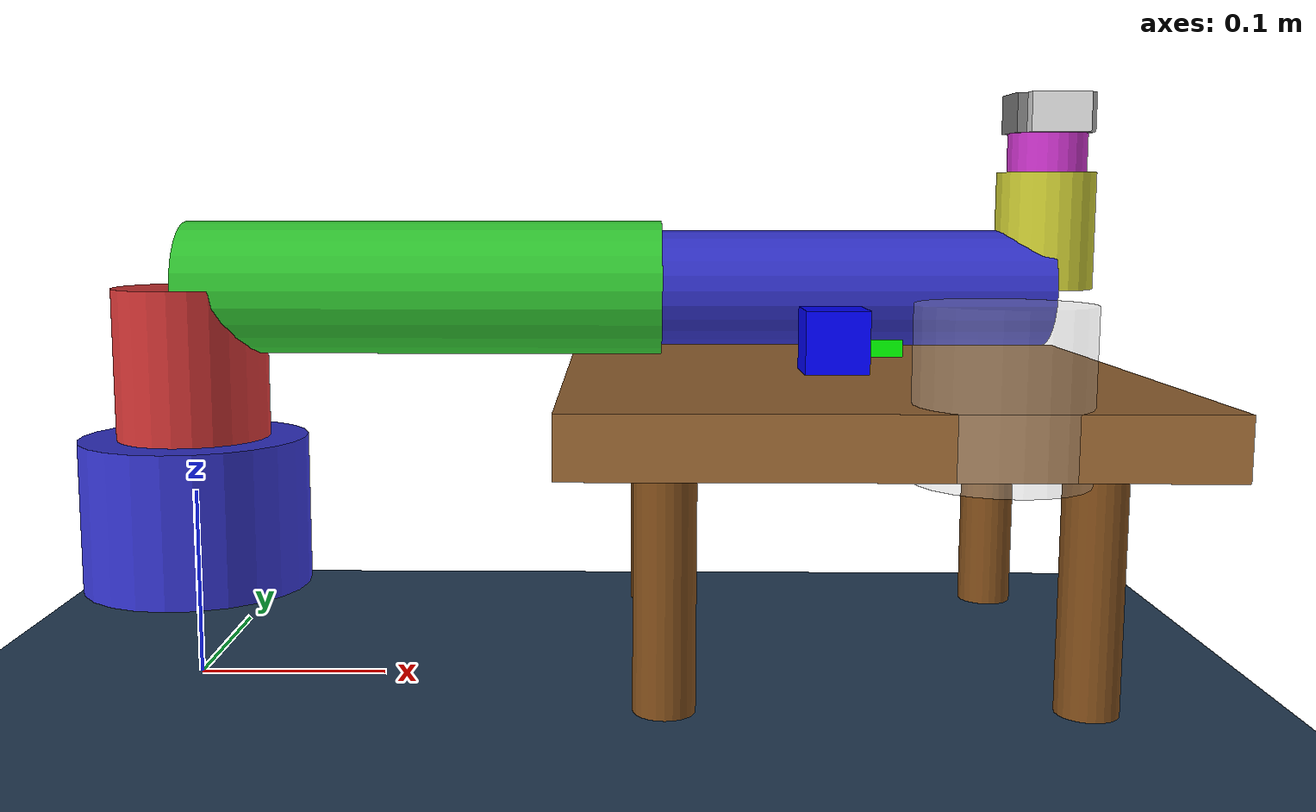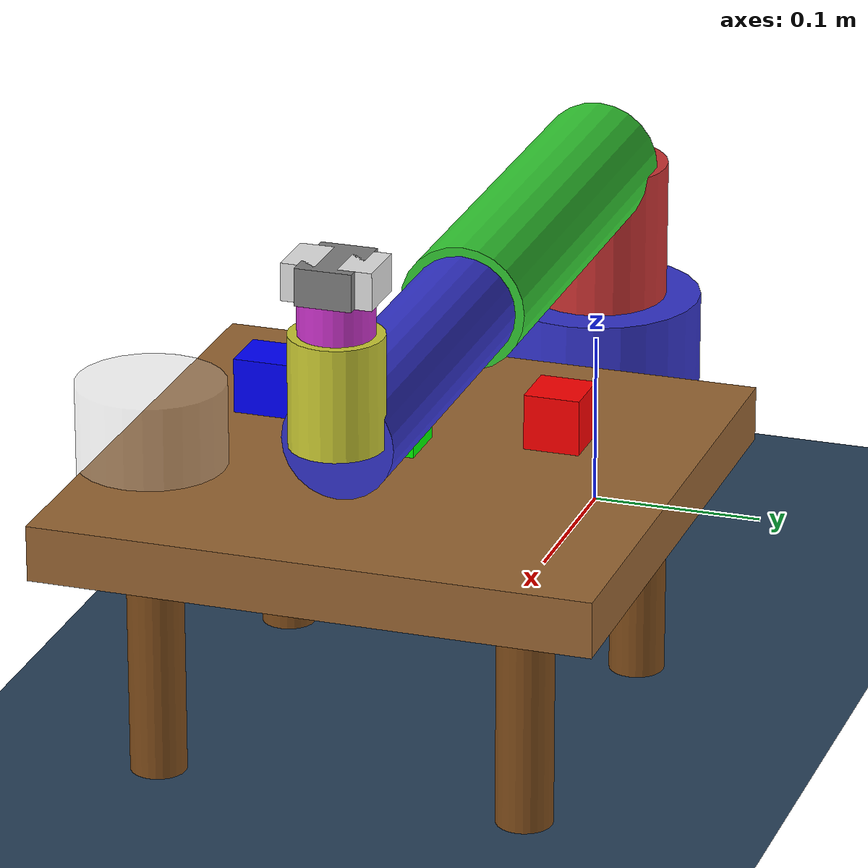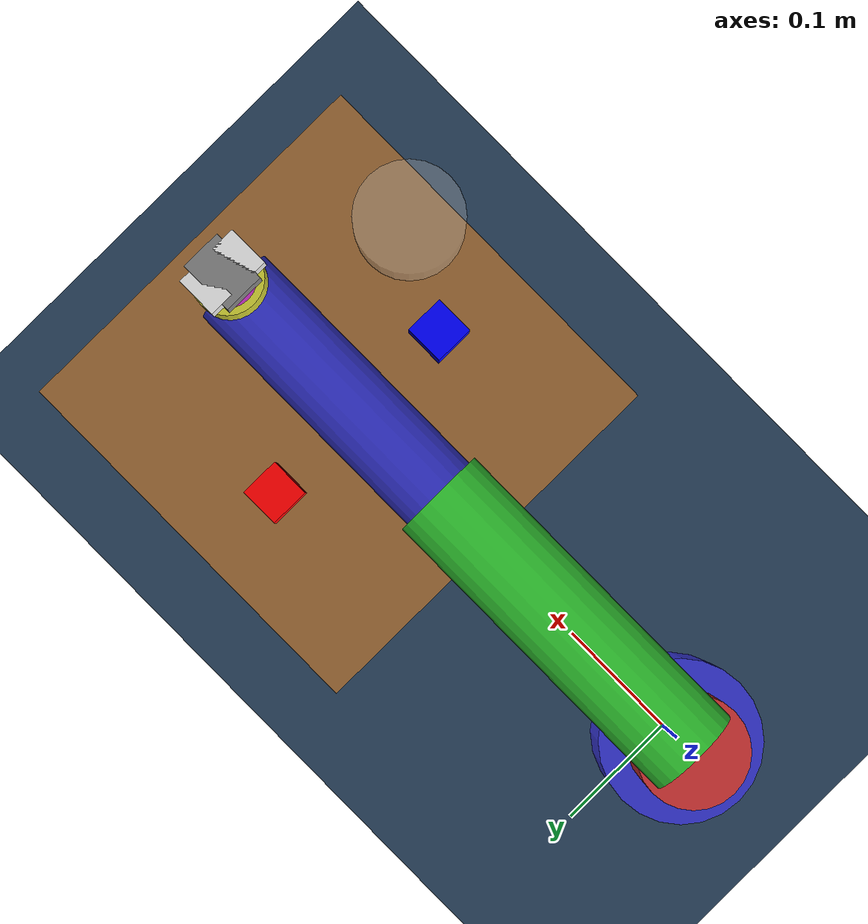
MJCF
<mujoco model="grasp_scene">
  <include file="robot.xml"/>

  <visual>
    <global offwidth="1280" offheight="720"/>
  </visual>

  <worldbody>
    <!-- Table (further from arm, smaller) -->
    <body name="table" pos="0.35 0 0.15">
      <geom name="table_top" size="0.15 0.15 0.015" type="box" rgba="0.6 0.4 0.2 1" condim="4" friction="1 0.5 0.01"/>
      <geom name="table_leg1" fromto="0.1 0.1 -0.015 0.1 0.1 -0.135" size="0.015" type="cylinder" rgba="0.5 0.3 0.1 1"/>
      <geom name="table_leg2" fromto="0.1 -0.1 -0.015 0.1 -0.1 -0.135" size="0.015" type="cylinder" rgba="0.5 0.3 0.1 1"/>
      <geom name="table_leg3" fromto="-0.1 0.1 -0.015 -0.1 0.1 -0.135" size="0.015" type="cylinder" rgba="0.5 0.3 0.1 1"/>
      <geom name="table_leg4" fromto="-0.1 -0.1 -0.015 -0.1 -0.1 -0.135" size="0.015" type="cylinder" rgba="0.5 0.3 0.1 1"/>
    </body>

    <!-- 3 colored blocks: red, green, blue -->
    <body name="red_block" pos="0.33 0.08 0.19">
      <freejoint name="red_block_joint"/>
      <geom name="red_geom" size="0.015 0.015 0.015" type="box" rgba="1 0 0 1" mass="0.01" condim="4" friction="3 0.5 0.01" conaffinity="1"/>
    </body>

    <body name="green_block" pos="0.36 0.0 0.19">
      <freejoint name="green_block_joint"/>
      <geom name="green_geom" size="0.015 0.015 0.015" type="box" rgba="0 1 0 1" mass="0.01" condim="4" friction="3 0.5 0.01" conaffinity="1"/>
    </body>

    <body name="blue_block" pos="0.33 -0.08 0.19">
      <freejoint name="blue_block_joint"/>
      <geom name="blue_geom" size="0.015 0.015 0.015" type="box" rgba="0 0 1 1" mass="0.01" condim="4" friction="3 0.5 0.01" conaffinity="1"/>
    </body>

    <!-- Target location for placing green block -->
    <body name="target" pos="0.4 -0.12 0.17">
      <geom name="target_geom" size="0.04 0.04 0.005" type="cylinder" rgba="0.8 0.8 0.8 0.3" contype="0" conaffinity="0"/>
    </body>
  </worldbody>
</mujoco>

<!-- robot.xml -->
<mujoco model="5dof_arm">
  <compiler angle="radian" autolimits="true"/>

  <default>
    <joint armature="0.1" damping="3" limited="true"/>
    <geom condim="4" friction="5 0.5 0.01" conaffinity="1"/>
    <motor ctrllimited="true" ctrlrange="-1 1"/>
  </default>

  <asset>
    <texture builtin="gradient" height="100" rgb1="0.8 0.6 0.4" rgb2="0.6 0.4 0.2" type="skybox" width="100"/>
    <texture builtin="checker" height="100" name="texplane" rgb1="0.2 0.3 0.4" rgb2="0.1 0.2 0.3" type="2d" width="100"/>
    <material name="MatPlane" reflectance="0.5" shininess="1" specular="1" texrepeat="60 60" texture="texplane"/>
  </asset>

  <worldbody>
    <light cutoff="100" diffuse="1 1 1" dir="-0 0 -1.3" directional="true" exponent="1" pos="0 0 1.3" specular=".1 .1 .1"/>
    <geom conaffinity="1" condim="3" material="MatPlane" name="floor" pos="0 0 0" size="0 0 0.05" type="plane"/>

    <body name="base" pos="0 0 0.05">
      <geom fromto="0 0 0 0 0 0.08" name="base_link" size="0.06" type="cylinder" rgba="0.2 0.2 0.8 1"/>

      <body name="link1" pos="0 0 0.08">
        <joint axis="0 0 1" name="joint1" range="-3.14 3.14" type="hinge"/>
        <geom fromto="0 0 0 0 0 0.08" name="link1_geom" size="0.04" type="cylinder" rgba="0.8 0.2 0.2 1"/>

        <body name="link2" pos="0 0 0.08">
          <joint axis="0 1 0" name="joint2" range="-1.8 1.8" type="hinge"/>
          <geom fromto="0 0 0 0.25 0 0" name="link2_geom" size="0.035" type="cylinder" rgba="0.2 0.8 0.2 1"/>

          <body name="link3" pos="0.25 0 0">
            <joint axis="0 1 0" name="joint3" range="-3.0 3.0" type="hinge"/>
            <geom fromto="0 0 0 0.2 0 0" name="link3_geom" size="0.03" type="cylinder" rgba="0.2 0.2 0.8 1"/>

            <body name="link4" pos="0.2 0 0">
              <joint axis="1 0 0" name="joint4" range="-2.0 2.0" type="hinge"/>
              <geom fromto="0 0 0 0 0 0.06" name="link4_geom" size="0.025" type="cylinder" rgba="0.8 0.8 0.2 1"/>

              <body name="link5" pos="0 0 0.06">
                <joint axis="0 0 1" name="joint5" range="-3.14 3.14" type="hinge"/>
                <geom fromto="0 0 0 0 0 0.03" name="link5_geom" size="0.02" type="cylinder" rgba="0.8 0.2 0.8 1"/>

                <!-- Gripper: two fingers slide along y-axis (perpendicular to arm) -->
                <body name="gripper_base" pos="0 0 0.03">
                  <geom name="gripper_base_geom" size="0.02 0.015 0.01" type="box" rgba="0.5 0.5 0.5 1"/>

                  <!-- Left finger: slides in +y direction, geom extends inward -->
                  <body name="left_finger" pos="0 0.012 0">
                    <joint axis="0 1 0" name="finger_left" range="-0.005 0.025" type="slide"/>
                    <geom name="left_finger_geom" pos="0 0.003 0" size="0.015 0.009 0.01" type="box" rgba="0.9 0.9 0.9 1"/>
                  </body>

                  <!-- Right finger: slides in -y direction, geom extends inward -->
                  <body name="right_finger" pos="0 -0.012 0">
                    <joint axis="0 1 0" name="finger_right" range="-0.025 0.005" type="slide"/>
                    <geom name="right_finger_geom" pos="0 -0.003 0" size="0.015 0.009 0.01" type="box" rgba="0.9 0.9 0.9 1"/>
                  </body>

                  <!-- End effector site at gripper center -->
                  <site name="end_effector" pos="0 0 0" size="0.005"/>
                </body>
              </body>
            </body>
          </body>
        </body>
      </body>
    </body>
  </worldbody>

  <actuator>
    <motor gear="50" joint="joint1" name="act_joint1"/>
    <motor gear="50" joint="joint2" name="act_joint2"/>
    <motor gear="30" joint="joint3" name="act_joint3"/>
    <motor gear="20" joint="joint4" name="act_joint4"/>
    <motor gear="10" joint="joint5" name="act_joint5"/>
    <motor gear="50" joint="finger_left" name="act_finger_left"/>
    <motor gear="50" joint="finger_right" name="act_finger_right"/>
  </actuator>
</mujoco>
